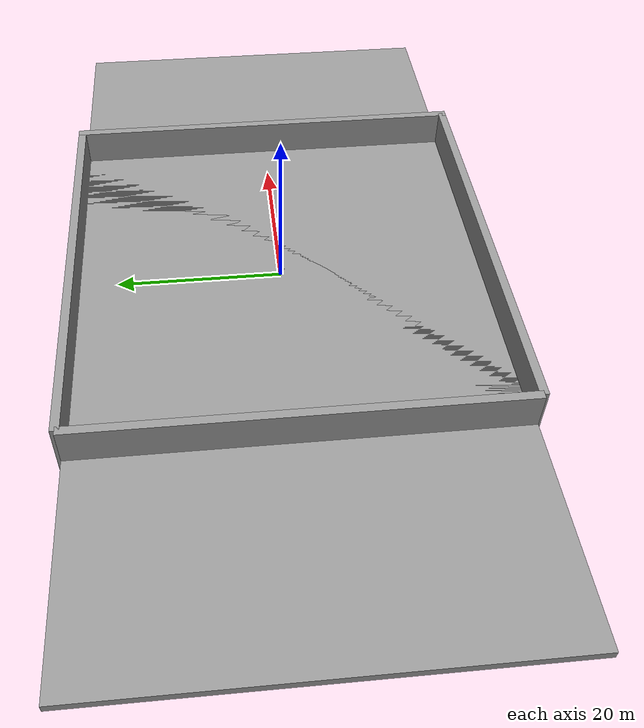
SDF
<?xml version='1.0'?>
<sdf version='1.6'>
  <model name='pool'>
    <link name='link_0'>
      <pose frame=''>0 0 0 0 -0 0</pose>
      <inertial>
        <mass>1</mass>
        <inertia>
          <ixx>0.166667</ixx>
          <ixy>0</ixy>
          <ixz>0</ixz>
          <iyy>0.166667</iyy>
          <iyz>0</iyz>
          <izz>0.166667</izz>
        </inertia>
        <pose frame=''>0 0 0 0 -0 0</pose>
      </inertial>
      <gravity>1</gravity>
      <self_collide>0</self_collide>
      <kinematic>0</kinematic>
      <visual name='ModelPreview_0::link_0::visual_2'>
        <pose frame=''>0 0 0 0 -0 0</pose>
        <geometry>
          <box>
            <size>100 50 1</size>
          </box>
        </geometry>
        <material>
          <lighting>1</lighting>
          <script>
            <uri>file://media/materials/scripts/gazebo.material</uri>
            <name>Gazebo/Grey</name>
          </script>
          <ambient>0.3 0.3 0.3 1</ambient>
          <diffuse>0.7 0.7 0.7 1</diffuse>
          <specular>0.01 0.01 0.01 1</specular>
          <emissive>0 0 0 1</emissive>
          <shader type='vertex'>
            <normal_map>__default__</normal_map>
          </shader>
        </material>
        <cast_shadows>1</cast_shadows>
        <transparency>0</transparency>
      </visual>
      <visual name='ModelPreview_0::link_0::visual_3'>
        <pose frame=''>0 0 0 0 -0 0</pose>
        <geometry>
          <box>
            <size>100 50 1</size>
          </box>
        </geometry>
        <material>
          <lighting>1</lighting>
          <script>
            <uri>file://media/materials/scripts/gazebo.material</uri>
            <name>Gazebo/Grey</name>
          </script>
          <ambient>0.3 0.3 0.3 1</ambient>
          <diffuse>0.7 0.7 0.7 1</diffuse>
          <specular>0.01 0.01 0.01 1</specular>
          <emissive>0 0 0 1</emissive>
          <shader type='vertex'>
            <normal_map>__default__</normal_map>
          </shader>
        </material>
        <cast_shadows>1</cast_shadows>
        <transparency>0</transparency>
      </visual>
      <visual name='ModelPreview_0::link_0::visual_4'>
        <pose frame=''>0 0 0 0 -0 0</pose>
        <geometry>
          <box>
            <size>100 50 1</size>
          </box>
        </geometry>
        <material>
          <lighting>1</lighting>
          <script>
            <uri>file://media/materials/scripts/gazebo.material</uri>
            <name>Gazebo/Grey</name>
          </script>
          <ambient>0.3 0.3 0.3 1</ambient>
          <diffuse>0.7 0.7 0.7 1</diffuse>
          <specular>0.01 0.01 0.01 1</specular>
          <emissive>0 0 0 1</emissive>
          <shader type='vertex'>
            <normal_map>__default__</normal_map>
          </shader>
        </material>
        <cast_shadows>1</cast_shadows>
        <transparency>0</transparency>
      </visual>
      <visual name='visual'>
        <pose frame=''>0 0 0 0 -0 0</pose>
        <geometry>
          <box>
            <size>50 50 1</size>
          </box>
        </geometry>
        <material>
          <lighting>1</lighting>
          <script>
            <uri>file://media/materials/scripts/gazebo.material</uri>
            <name>Gazebo/Grey</name>
          </script>
          <ambient>0.3 0.3 0.3 1</ambient>
          <diffuse>0.7 0.7 0.7 1</diffuse>
          <specular>0.01 0.01 0.01 1</specular>
          <emissive>0 0 0 1</emissive>
          <shader type='vertex'>
            <normal_map>__default__</normal_map>
          </shader>
        </material>
        <cast_shadows>1</cast_shadows>
        <transparency>0</transparency>
      </visual>
      <visual name='ModelPreview_0::link_0::visual_1'>
        <pose frame=''>0 0 0 0 -0 0</pose>
        <geometry>
          <box>
            <size>100 50 1</size>
          </box>
        </geometry>
        <material>
          <lighting>1</lighting>
          <script>
            <uri>file://media/materials/scripts/gazebo.material</uri>
            <name>Gazebo/Grey</name>
          </script>
          <ambient>0.3 0.3 0.3 1</ambient>
          <diffuse>0.7 0.7 0.7 1</diffuse>
          <specular>0.01 0.01 0.01 1</specular>
          <emissive>0 0 0 1</emissive>
          <shader type='vertex'>
            <normal_map>__default__</normal_map>
          </shader>
        </material>
        <cast_shadows>1</cast_shadows>
        <transparency>0</transparency>
      </visual>
      <visual name='ModelPreview_0::link_0::visual_5'>
        <pose frame=''>0 0 0 0 -0 0</pose>
        <geometry>
          <box>
            <size>100 50 1</size>
          </box>
        </geometry>
        <material>
          <lighting>1</lighting>
          <script>
            <uri>file://media/materials/scripts/gazebo.material</uri>
            <name>Gazebo/Grey</name>
          </script>
          <ambient>0.3 0.3 0.3 1</ambient>
          <diffuse>0.7 0.7 0.7 1</diffuse>
          <specular>0.01 0.01 0.01 1</specular>
          <emissive>0 0 0 1</emissive>
          <shader type='vertex'>
            <normal_map>__default__</normal_map>
          </shader>
        </material>
        <cast_shadows>1</cast_shadows>
        <transparency>0</transparency>
      </visual>
      <collision name='collision'>
        <laser_retro>0</laser_retro>
        <max_contacts>10</max_contacts>
        <pose frame=''>0 0 0 0 -0 0</pose>
        <geometry>
          <box>
            <size>50 50 1</size>
          </box>
        </geometry>
        <surface>
          <friction>
            <ode>
              <mu>1</mu>
              <mu2>1</mu2>
              <fdir1>0 0 0</fdir1>
              <slip1>0</slip1>
              <slip2>0</slip2>
            </ode>
            <torsional>
              <coefficient>1</coefficient>
              <patch_radius>0</patch_radius>
              <surface_radius>0</surface_radius>
              <use_patch_radius>1</use_patch_radius>
              <ode>
                <slip>0</slip>
              </ode>
            </torsional>
          </friction>
          <bounce>
            <restitution_coefficient>0</restitution_coefficient>
            <threshold>1e+06</threshold>
          </bounce>
          <contact>
            <collide_without_contact>0</collide_without_contact>
            <collide_without_contact_bitmask>1</collide_without_contact_bitmask>
            <collide_bitmask>1</collide_bitmask>
            <ode>
              <soft_cfm>0</soft_cfm>
              <soft_erp>0.2</soft_erp>
              <kp>1e+13</kp>
              <kd>1</kd>
              <max_vel>0.01</max_vel>
              <min_depth>0</min_depth>
            </ode>
            <bullet>
              <split_impulse>1</split_impulse>
              <split_impulse_penetration_threshold>-0.01</split_impulse_penetration_threshold>
              <soft_cfm>0</soft_cfm>
              <soft_erp>0.2</soft_erp>
              <kp>1e+13</kp>
              <kd>1</kd>
            </bullet>
          </contact>
        </surface>
      </collision>
    </link>
    <link name='link_1'>
      <pose frame=''>0 0 0 0 -0 0</pose>
      <inertial>
        <mass>1</mass>
        <inertia>
          <ixx>0.166667</ixx>
          <ixy>0</ixy>
          <ixz>0</ixz>
          <iyy>0.166667</iyy>
          <iyz>0</iyz>
          <izz>0.166667</izz>
        </inertia>
        <pose frame=''>0 0 0 0 -0 0</pose>
      </inertial>
      <gravity>1</gravity>
      <self_collide>0</self_collide>
      <kinematic>0</kinematic>
      <visual name='visual'>
        <pose frame=''>0 25 0 0 -0 0</pose>
        <geometry>
          <box>
            <size>50 1 10</size>
          </box>
        </geometry>
        <material>
          <lighting>1</lighting>
          <script>
            <uri>file://media/materials/scripts/gazebo.material</uri>
            <name>Gazebo/Grey</name>
          </script>
          <ambient>0.3 0.3 0.3 1</ambient>
          <diffuse>0.7 0.7 0.7 1</diffuse>
          <specular>0.01 0.01 0.01 1</specular>
          <emissive>0 0 0 1</emissive>
          <shader type='vertex'>
            <normal_map>__default__</normal_map>
          </shader>
        </material>
        <cast_shadows>1</cast_shadows>
        <transparency>0</transparency>
      </visual>
      <collision name='collision'>
        <laser_retro>0</laser_retro>
        <max_contacts>10</max_contacts>
        <pose frame=''>0 25 0 0 -0 0</pose>
        <geometry>
          <box>
            <size>50 1 10</size>
          </box>
        </geometry>
        <surface>
          <friction>
            <ode>
              <mu>1</mu>
              <mu2>1</mu2>
              <fdir1>0 0 0</fdir1>
              <slip1>0</slip1>
              <slip2>0</slip2>
            </ode>
            <torsional>
              <coefficient>1</coefficient>
              <patch_radius>0</patch_radius>
              <surface_radius>0</surface_radius>
              <use_patch_radius>1</use_patch_radius>
              <ode>
                <slip>0</slip>
              </ode>
            </torsional>
          </friction>
          <bounce>
            <restitution_coefficient>0</restitution_coefficient>
            <threshold>1e+06</threshold>
          </bounce>
          <contact>
            <collide_without_contact>0</collide_without_contact>
            <collide_without_contact_bitmask>1</collide_without_contact_bitmask>
            <collide_bitmask>1</collide_bitmask>
            <ode>
              <soft_cfm>0</soft_cfm>
              <soft_erp>0.2</soft_erp>
              <kp>1e+13</kp>
              <kd>1</kd>
              <max_vel>0.01</max_vel>
              <min_depth>0</min_depth>
            </ode>
            <bullet>
              <split_impulse>1</split_impulse>
              <split_impulse_penetration_threshold>-0.01</split_impulse_penetration_threshold>
              <soft_cfm>0</soft_cfm>
              <soft_erp>0.2</soft_erp>
              <kp>1e+13</kp>
              <kd>1</kd>
            </bullet>
          </contact>
        </surface>
      </collision>
    </link>
    <link name='link_4'>
      <pose frame=''>0 0 0 0 -0 0</pose>
      <inertial>
        <mass>1</mass>
        <inertia>
          <ixx>0.166667</ixx>
          <ixy>0</ixy>
          <ixz>0</ixz>
          <iyy>0.166667</iyy>
          <iyz>0</iyz>
          <izz>0.166667</izz>
        </inertia>
        <pose frame=''>0 0 0 0 -0 0</pose>
      </inertial>
      <gravity>1</gravity>
      <self_collide>0</self_collide>
      <kinematic>0</kinematic>
      <visual name='visual'>
        <pose frame=''>-25 0 0 0 -0 0</pose>
        <geometry>
          <box>
            <size>1 50 10</size>
          </box>
        </geometry>
        <material>
          <lighting>1</lighting>
          <script>
            <uri>file://media/materials/scripts/gazebo.material</uri>
            <name>Gazebo/Grey</name>
          </script>
          <ambient>0.3 0.3 0.3 1</ambient>
          <diffuse>0.7 0.7 0.7 1</diffuse>
          <specular>0.01 0.01 0.01 1</specular>
          <emissive>0 0 0 1</emissive>
          <shader type='vertex'>
            <normal_map>__default__</normal_map>
          </shader>
        </material>
        <cast_shadows>1</cast_shadows>
        <transparency>0</transparency>
      </visual>
      <visual name='ModelPreview_0::link_4::visual_1'>
        <pose frame=''>0 0 0 0 -0 0</pose>
        <geometry>
          <box>
            <size>1 1 1</size>
          </box>
        </geometry>
        <material>
          <lighting>1</lighting>
          <script>
            <uri>file://media/materials/scripts/gazebo.material</uri>
            <name>Gazebo/Grey</name>
          </script>
          <ambient>0.3 0.3 0.3 1</ambient>
          <diffuse>0.7 0.7 0.7 1</diffuse>
          <specular>0.01 0.01 0.01 1</specular>
          <emissive>0 0 0 1</emissive>
          <shader type='vertex'>
            <normal_map>__default__</normal_map>
          </shader>
        </material>
        <cast_shadows>1</cast_shadows>
        <transparency>0</transparency>
      </visual>
      <collision name='collision'>
        <laser_retro>0</laser_retro>
        <max_contacts>10</max_contacts>
        <pose frame=''>-25 0 0 0 -0 0</pose>
        <geometry>
          <box>
            <size>1 51 10</size>
          </box>
        </geometry>
        <surface>
          <friction>
            <ode>
              <mu>1</mu>
              <mu2>1</mu2>
              <fdir1>0 0 0</fdir1>
              <slip1>0</slip1>
              <slip2>0</slip2>
            </ode>
            <torsional>
              <coefficient>1</coefficient>
              <patch_radius>0</patch_radius>
              <surface_radius>0</surface_radius>
              <use_patch_radius>1</use_patch_radius>
              <ode>
                <slip>0</slip>
              </ode>
            </torsional>
          </friction>
          <bounce>
            <restitution_coefficient>0</restitution_coefficient>
            <threshold>1e+06</threshold>
          </bounce>
          <contact>
            <collide_without_contact>0</collide_without_contact>
            <collide_without_contact_bitmask>1</collide_without_contact_bitmask>
            <collide_bitmask>1</collide_bitmask>
            <ode>
              <soft_cfm>0</soft_cfm>
              <soft_erp>0.2</soft_erp>
              <kp>1e+13</kp>
              <kd>1</kd>
              <max_vel>0.01</max_vel>
              <min_depth>0</min_depth>
            </ode>
            <bullet>
              <split_impulse>1</split_impulse>
              <split_impulse_penetration_threshold>-0.01</split_impulse_penetration_threshold>
              <soft_cfm>0</soft_cfm>
              <soft_erp>0.2</soft_erp>
              <kp>1e+13</kp>
              <kd>1</kd>
            </bullet>
          </contact>
        </surface>
      </collision>
    </link>
    <link name='link_5'>
      <pose frame=''>0 0 0 0 -0 0</pose>
      <inertial>
        <mass>1</mass>
        <inertia>
          <ixx>0.166667</ixx>
          <ixy>0</ixy>
          <ixz>0</ixz>
          <iyy>0.166667</iyy>
          <iyz>0</iyz>
          <izz>0.166667</izz>
        </inertia>
        <pose frame=''>0 0 0 0 -0 0</pose>
      </inertial>
      <gravity>1</gravity>
      <self_collide>0</self_collide>
      <kinematic>0</kinematic>
      <visual name='visual'>
        <pose frame=''>25 0 0 0 -0 0</pose>
        <geometry>
          <box>
            <size>1 51 10</size>
          </box>
        </geometry>
        <material>
          <lighting>1</lighting>
          <script>
            <uri>file://media/materials/scripts/gazebo.material</uri>
            <name>Gazebo/Grey</name>
          </script>
          <ambient>0.3 0.3 0.3 1</ambient>
          <diffuse>0.7 0.7 0.7 1</diffuse>
          <specular>0.01 0.01 0.01 1</specular>
          <emissive>0 0 0 1</emissive>
          <shader type='vertex'>
            <normal_map>__default__</normal_map>
          </shader>
        </material>
        <cast_shadows>1</cast_shadows>
        <transparency>0</transparency>
      </visual>
      <collision name='collision'>
        <laser_retro>0</laser_retro>
        <max_contacts>10</max_contacts>
        <pose frame=''>25 0 0 0 -0 0</pose>
        <geometry>
          <box>
            <size>1 51 10</size>
          </box>
        </geometry>
        <surface>
          <friction>
            <ode>
              <mu>1</mu>
              <mu2>1</mu2>
              <fdir1>0 0 0</fdir1>
              <slip1>0</slip1>
              <slip2>0</slip2>
            </ode>
            <torsional>
              <coefficient>1</coefficient>
              <patch_radius>0</patch_radius>
              <surface_radius>0</surface_radius>
              <use_patch_radius>1</use_patch_radius>
              <ode>
                <slip>0</slip>
              </ode>
            </torsional>
          </friction>
          <bounce>
            <restitution_coefficient>0</restitution_coefficient>
            <threshold>1e+06</threshold>
          </bounce>
          <contact>
            <collide_without_contact>0</collide_without_contact>
            <collide_without_contact_bitmask>1</collide_without_contact_bitmask>
            <collide_bitmask>1</collide_bitmask>
            <ode>
              <soft_cfm>0</soft_cfm>
              <soft_erp>0.2</soft_erp>
              <kp>1e+13</kp>
              <kd>1</kd>
              <max_vel>0.01</max_vel>
              <min_depth>0</min_depth>
            </ode>
            <bullet>
              <split_impulse>1</split_impulse>
              <split_impulse_penetration_threshold>-0.01</split_impulse_penetration_threshold>
              <soft_cfm>0</soft_cfm>
              <soft_erp>0.2</soft_erp>
              <kp>1e+13</kp>
              <kd>1</kd>
            </bullet>
          </contact>
        </surface>
      </collision>
    </link>
    <link name='link_6'>
      <pose frame=''>0 0 0 0 -0 0</pose>
      <inertial>
        <mass>1</mass>
        <inertia>
          <ixx>0.166667</ixx>
          <ixy>0</ixy>
          <ixz>0</ixz>
          <iyy>0.166667</iyy>
          <iyz>0</iyz>
          <izz>0.166667</izz>
        </inertia>
        <pose frame=''>0 0 0 0 -0 0</pose>
      </inertial>
      <gravity>1</gravity>
      <self_collide>0</self_collide>
      <kinematic>0</kinematic>
      <visual name='visual'>
        <pose frame=''>0 -25 0 0 -0 0</pose>
        <geometry>
          <box>
            <size>50 1 10</size>
          </box>
        </geometry>
        <material>
          <lighting>1</lighting>
          <script>
            <uri>file://media/materials/scripts/gazebo.material</uri>
            <name>Gazebo/Grey</name>
          </script>
          <ambient>0.3 0.3 0.3 1</ambient>
          <diffuse>0.7 0.7 0.7 1</diffuse>
          <specular>0.01 0.01 0.01 1</specular>
          <emissive>0 0 0 1</emissive>
          <shader type='vertex'>
            <normal_map>__default__</normal_map>
          </shader>
        </material>
        <cast_shadows>1</cast_shadows>
        <transparency>0</transparency>
      </visual>
      <collision name='collision'>
        <laser_retro>0</laser_retro>
        <max_contacts>10</max_contacts>
        <pose frame=''>0 -25 0 0 -0 0</pose>
        <geometry>
          <box>
            <size>50 1 10</size>
          </box>
        </geometry>
        <surface>
          <friction>
            <ode>
              <mu>1</mu>
              <mu2>1</mu2>
              <fdir1>0 0 0</fdir1>
              <slip1>0</slip1>
              <slip2>0</slip2>
            </ode>
            <torsional>
              <coefficient>1</coefficient>
              <patch_radius>0</patch_radius>
              <surface_radius>0</surface_radius>
              <use_patch_radius>1</use_patch_radius>
              <ode>
                <slip>0</slip>
              </ode>
            </torsional>
          </friction>
          <bounce>
            <restitution_coefficient>0</restitution_coefficient>
            <threshold>1e+06</threshold>
          </bounce>
          <contact>
            <collide_without_contact>0</collide_without_contact>
            <collide_without_contact_bitmask>1</collide_without_contact_bitmask>
            <collide_bitmask>1</collide_bitmask>
            <ode>
              <soft_cfm>0</soft_cfm>
              <soft_erp>0.2</soft_erp>
              <kp>1e+13</kp>
              <kd>1</kd>
              <max_vel>0.01</max_vel>
              <min_depth>0</min_depth>
            </ode>
            <bullet>
              <split_impulse>1</split_impulse>
              <split_impulse_penetration_threshold>-0.01</split_impulse_penetration_threshold>
              <soft_cfm>0</soft_cfm>
              <soft_erp>0.2</soft_erp>
              <kp>1e+13</kp>
              <kd>1</kd>
            </bullet>
          </contact>
        </surface>
      </collision>
    </link>
    <static>0</static>
    <allow_auto_disable>1</allow_auto_disable>
  </model>
</sdf>
